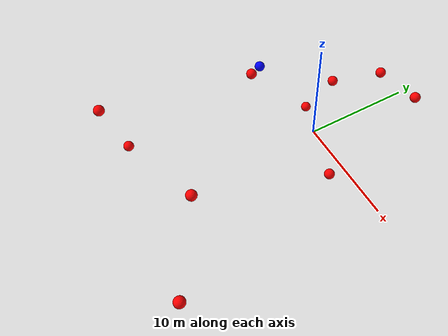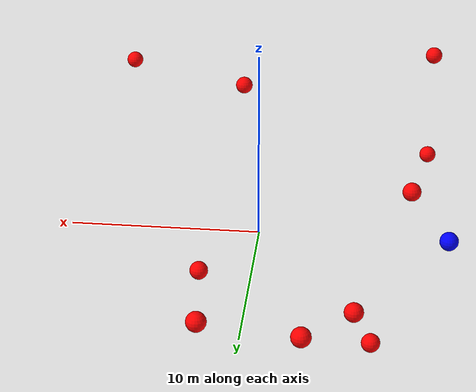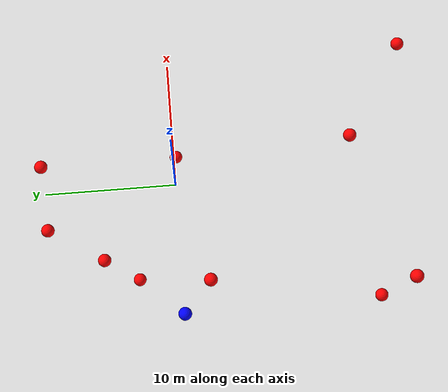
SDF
<?xml version="1.0" ?>
<sdf version="1.8">
    <world name="3d_world">
        <physics name="1ms" type="ode">
            <max_step_size>0.001</max_step_size>
            <real_time_factor>1.0</real_time_factor>
            <real_time_update_rate>1000.0</real_time_update_rate>
        </physics>
        <gravity>0 0 0</gravity>

        <plugin
            filename="gz-sim-physics-system"
            name="gz::sim::v8::systems::Physics">
        </plugin>
        <plugin
            filename="libignition-gazebo-user-commands-system.so"
            name="ignition::gazebo::systems::UserCommands">
        </plugin>
        <plugin
            filename="gz-sim-scene-broadcaster-system"
            name="gz::sim::systems::SceneBroadcaster">
        </plugin>
        <plugin
            filename="gz-sim-sensors-system"
            name="gz::sim::systems::Sensors">
            <render_engine>ogre2</render_engine>
        </plugin>

        <light type="directional" name="sun">
            <cast_shadows>true</cast_shadows>
            <pose>0 0 10 0 0 0</pose>
            <diffuse>0.8 0.8 0.8 1</diffuse>
            <specular>0.2 0.2 0.2 1</specular>
            <attenuation>
                <range>1000</range>
                <constant>0.9</constant>
                <linear>0.01</linear>
                <quadratic>0.001</quadratic>
            </attenuation>
            <direction>-0.5 0.1 -0.9</direction>
        </light>

        <!-- AGENTE -->
        <model name='agente' canonical_link='chassis'>
            <pose relative_to='world'>-10.0 0 0.0 0 0 0</pose>
            <link name='chassis'>
                <pose relative_to='__model__'>0.0 0 0.0 0 0 0</pose>
                <inertial>
                    <mass>1.14395</mass>
                    <inertia>
                        <ixx>0.095329</ixx>
                        <ixy>0</ixy>
                        <ixz>0</ixz>
                        <iyy>0.381317</iyy>
                        <iyz>0</iyz>
                        <izz>0.476646</izz>
                    </inertia>
                </inertial>
                <visual name='visual'>
                    <geometry>
                        <sphere>
                            <radius>0.5</radius>
                        </sphere>
                    </geometry>
                    <material>
                        <ambient>0.0 0.0 1.0 1</ambient>
                        <diffuse>0.0 0.0 1.0 1</diffuse>
                        <specular>0.0 0.0 1.0 1</specular>
                    </material>
                </visual>
                <collision name='collision'>
                    <geometry>
                        <sphere>
                            <radius>0.5</radius>
                        </sphere>
                    </geometry>
                </collision>
                <enable_gravity>false</enable_gravity>
            </link>

            <link name='lidar_link'>
                <pose relative_to='chassis'>0.0 0 0.1 0 0 0</pose>
                <inertial>
                    <mass>0.1</mass>
                    <inertia>
                        <ixx>0.000166667</ixx>
                        <iyy>0.000166667</iyy>
                        <izz>0.000166667</izz>
                    </inertia>
                </inertial>
                <collision name='collision'>
                    <geometry>
                        <cylinder>
                            <radius>0.05</radius>
                            <length>0.1</length>
                        </cylinder>
                    </geometry>
                </collision>
                <visual name='visual'>
                    <geometry>
                        <cylinder>
                            <radius>0.05</radius>
                            <length>0.1</length>
                        </cylinder>
                    </geometry>
                    <material>
                        <ambient>0.0 1.0 0.0 1</ambient>
                        <diffuse>0.0 1.0 0.0 1</diffuse>
                        <specular>0.0 1.0 0.0 1</specular>
                    </material>
                </visual>
                <sensor name="lidar" type="gpu_lidar">
                    <topic>scan</topic>
                    <update_rate>10</update_rate>
                    <lidar>
                        <scan>
                            <horizontal>
                                <samples>5000</samples>
                                <resolution>1</resolution>
                                <min_angle>-3.14159</min_angle>
                                <max_angle>3.14159</max_angle>
                            </horizontal>
                        </scan>
                        <range>
                            <min>0.1</min>
                            <max>10.0</max>
                            <resolution>0.01</resolution>
                        </range>
                    </lidar>
                    <visualize>true</visualize>
                    <always_on>true</always_on>
                    <update_rate>10</update_rate>
                    <pose_frame>lidar</pose_frame>
                </sensor>
                <enable_gravity>false</enable_gravity>
            </link>

            <joint name="lidar_joint" type="fixed">
                <parent>chassis</parent>
                <child>lidar_link</child>
            </joint>

            <plugin
                filename="ignition-gazebo-joint-state-publisher-system"
                name="ignition::gazebo::systems::JointStatePublisher">
            </plugin>
            <plugin
                filename="ignition-gazebo-odometry-publisher-system"
                name="ignition::gazebo::systems::OdometryPublisher">
                <dimensions>3</dimensions>
            </plugin>
            <plugin
                filename="ignition-gazebo-velocity-control-system"
                name="ignition::gazebo::systems::VelocityControl">
                <initial_linear>0.0 0 0</initial_linear>
                <initial_angular>0 0 0.0</initial_angular>
            </plugin>
            <plugin
                filename="libignition-gazebo-pose-publisher-system.so"
                name="ignition::gazebo::systems::PosePublisher">
                <topic>/agente/pose</topic>
                <frame_id>agente</frame_id>
                <update_rate>30</update_rate>
            </plugin>
        </model>

        <!-- OBSTACLE 1 -->
        <model name='obstacle_1' canonical_link='obstacle'>
            <static>false</static>
            <pose relative_to='world'>-9.29 -16.74 3.46 0 0 0</pose>
            <link name='obstacle'>
                <pose relative_to='__model__'>0.0 0 0.0 0 0 0</pose>
                <visual name='visual'>
                    <geometry>
                        <sphere>
                            <radius>0.50</radius>
                        </sphere>
                    </geometry>
                    <material>
                        <ambient>1.0 0.0 0.0 1</ambient>
                        <diffuse>1.0 0.0 0.0 1</diffuse>
                        <specular>1.0 0.0 0.0 1</specular>
                    </material>
                </visual>
                <collision name='collision'>
                    <geometry>
                        <sphere>
                            <radius>0.50</radius>
                        </sphere>
                    </geometry>
                </collision>
                <enable_gravity>false</enable_gravity>
            </link>

            <plugin
                filename="ignition-gazebo-velocity-control-system"
                name="ignition::gazebo::systems::VelocityControl">
                <initial_linear>0.70 1.83 -0.38</initial_linear>
                <initial_angular>0 0 0</initial_angular>
            </plugin>

            <plugin
                filename="ignition-gazebo-odometry-publisher-system"
                name="ignition::gazebo::systems::OdometryPublisher">
                <dimensions>3</dimensions>
            </plugin>
        </model>

        <!-- OBSTACLE 2 -->
        <model name='obstacle_2' canonical_link='obstacle'>
            <static>false</static>
            <pose relative_to='world'>3.28 -0.12 -2.65 0 0 0</pose>
            <link name='obstacle'>
                <pose relative_to='__model__'>0.0 0 0.0 0 0 0</pose>
                <visual name='visual'>
                    <geometry>
                        <sphere>
                            <radius>0.50</radius>
                        </sphere>
                    </geometry>
                    <material>
                        <ambient>1.0 0.0 0.0 1</ambient>
                        <diffuse>1.0 0.0 0.0 1</diffuse>
                        <specular>1.0 0.0 0.0 1</specular>
                    </material>
                </visual>
                <collision name='collision'>
                    <geometry>
                        <sphere>
                            <radius>0.50</radius>
                        </sphere>
                    </geometry>
                </collision>
                <enable_gravity>false</enable_gravity>
            </link>

            <plugin
                filename="ignition-gazebo-velocity-control-system"
                name="ignition::gazebo::systems::VelocityControl">
                <initial_linear>0.05 0.02 0.49</initial_linear>
                <initial_angular>0 0 0</initial_angular>
            </plugin>

            <plugin
                filename="ignition-gazebo-odometry-publisher-system"
                name="ignition::gazebo::systems::OdometryPublisher">
                <dimensions>3</dimensions>
            </plugin>
        </model>

        <!-- OBSTACLE 3 -->
        <model name='obstacle_3' canonical_link='obstacle'>
            <static>false</static>
            <pose relative_to='world'>-9.22 -15.13 -2.58 0 0 0</pose>
            <link name='obstacle'>
                <pose relative_to='__model__'>0.0 0 0.0 0 0 0</pose>
                <visual name='visual'>
                    <geometry>
                        <sphere>
                            <radius>0.50</radius>
                        </sphere>
                    </geometry>
                    <material>
                        <ambient>1.0 0.0 0.0 1</ambient>
                        <diffuse>1.0 0.0 0.0 1</diffuse>
                        <specular>1.0 0.0 0.0 1</specular>
                    </material>
                </visual>
                <collision name='collision'>
                    <geometry>
                        <sphere>
                            <radius>0.50</radius>
                        </sphere>
                    </geometry>
                </collision>
                <enable_gravity>false</enable_gravity>
            </link>

            <plugin
                filename="ignition-gazebo-velocity-control-system"
                name="ignition::gazebo::systems::VelocityControl">
                <initial_linear>1.13 1.63 0.28</initial_linear>
                <initial_angular>0 0 0</initial_angular>
            </plugin>

            <plugin
                filename="ignition-gazebo-odometry-publisher-system"
                name="ignition::gazebo::systems::OdometryPublisher">
                <dimensions>3</dimensions>
            </plugin>
        </model>

        <!-- OBSTACLE 4 -->
        <model name='obstacle_4' canonical_link='obstacle'>
            <static>false</static>
            <pose relative_to='world'>9.74 -18.16 1.81 0 0 0</pose>
            <link name='obstacle'>
                <pose relative_to='__model__'>0.0 0 0.0 0 0 0</pose>
                <visual name='visual'>
                    <geometry>
                        <sphere>
                            <radius>0.50</radius>
                        </sphere>
                    </geometry>
                    <material>
                        <ambient>1.0 0.0 0.0 1</ambient>
                        <diffuse>1.0 0.0 0.0 1</diffuse>
                        <specular>1.0 0.0 0.0 1</specular>
                    </material>
                </visual>
                <collision name='collision'>
                    <geometry>
                        <sphere>
                            <radius>0.50</radius>
                        </sphere>
                    </geometry>
                </collision>
                <enable_gravity>false</enable_gravity>
            </link>

            <plugin
                filename="ignition-gazebo-velocity-control-system"
                name="ignition::gazebo::systems::VelocityControl">
                <initial_linear>-0.81 1.82 -0.18</initial_linear>
                <initial_angular>0 0 0</initial_angular>
            </plugin>

            <plugin
                filename="ignition-gazebo-odometry-publisher-system"
                name="ignition::gazebo::systems::OdometryPublisher">
                <dimensions>3</dimensions>
            </plugin>
        </model>

        <!-- OBSTACLE 5 -->
        <model name='obstacle_5' canonical_link='obstacle'>
            <static>false</static>
            <pose relative_to='world'>-5.25 5.83 -0.89 0 0 0</pose>
            <link name='obstacle'>
                <pose relative_to='__model__'>0.0 0 0.0 0 0 0</pose>
                <visual name='visual'>
                    <geometry>
                        <sphere>
                            <radius>0.50</radius>
                        </sphere>
                    </geometry>
                    <material>
                        <ambient>1.0 0.0 0.0 1</ambient>
                        <diffuse>1.0 0.0 0.0 1</diffuse>
                        <specular>1.0 0.0 0.0 1</specular>
                    </material>
                </visual>
                <collision name='collision'>
                    <geometry>
                        <sphere>
                            <radius>0.50</radius>
                        </sphere>
                    </geometry>
                </collision>
                <enable_gravity>false</enable_gravity>
            </link>

            <plugin
                filename="ignition-gazebo-velocity-control-system"
                name="ignition::gazebo::systems::VelocityControl">
                <initial_linear>0.44 -1.93 0.29</initial_linear>
                <initial_angular>0 0 0</initial_angular>
            </plugin>

            <plugin
                filename="ignition-gazebo-odometry-publisher-system"
                name="ignition::gazebo::systems::OdometryPublisher">
                <dimensions>3</dimensions>
            </plugin>
        </model>

        <!-- OBSTACLE 6 -->
        <model name='obstacle_6' canonical_link='obstacle'>
            <static>false</static>
            <pose relative_to='world'>1.96 10.19 1.01 0 0 0</pose>
            <link name='obstacle'>
                <pose relative_to='__model__'>0.0 0 0.0 0 0 0</pose>
                <visual name='visual'>
                    <geometry>
                        <sphere>
                            <radius>0.50</radius>
                        </sphere>
                    </geometry>
                    <material>
                        <ambient>1.0 0.0 0.0 1</ambient>
                        <diffuse>1.0 0.0 0.0 1</diffuse>
                        <specular>1.0 0.0 0.0 1</specular>
                    </material>
                </visual>
                <collision name='collision'>
                    <geometry>
                        <sphere>
                            <radius>0.50</radius>
                        </sphere>
                    </geometry>
                </collision>
                <enable_gravity>false</enable_gravity>
            </link>

            <plugin
                filename="ignition-gazebo-velocity-control-system"
                name="ignition::gazebo::systems::VelocityControl">
                <initial_linear>-0.59 -1.90 -0.19</initial_linear>
                <initial_angular>0 0 0</initial_angular>
            </plugin>

            <plugin
                filename="ignition-gazebo-odometry-publisher-system"
                name="ignition::gazebo::systems::OdometryPublisher">
                <dimensions>3</dimensions>
            </plugin>
        </model>

        <!-- OBSTACLE 7 -->
        <model name='obstacle_7' canonical_link='obstacle'>
            <static>false</static>
            <pose relative_to='world'>-7.98 -2.07 1.72 0 0 0</pose>
            <link name='obstacle'>
                <pose relative_to='__model__'>0.0 0 0.0 0 0 0</pose>
                <visual name='visual'>
                    <geometry>
                        <sphere>
                            <radius>0.50</radius>
                        </sphere>
                    </geometry>
                    <material>
                        <ambient>1.0 0.0 0.0 1</ambient>
                        <diffuse>1.0 0.0 0.0 1</diffuse>
                        <specular>1.0 0.0 0.0 1</specular>
                    </material>
                </visual>
                <collision name='collision'>
                    <geometry>
                        <sphere>
                            <radius>0.50</radius>
                        </sphere>
                    </geometry>
                </collision>
                <enable_gravity>false</enable_gravity>
            </link>

            <plugin
                filename="ignition-gazebo-velocity-control-system"
                name="ignition::gazebo::systems::VelocityControl">
                <initial_linear>1.87 0.55 -0.46</initial_linear>
                <initial_angular>0 0 0</initial_angular>
            </plugin>

            <plugin
                filename="ignition-gazebo-odometry-publisher-system"
                name="ignition::gazebo::systems::OdometryPublisher">
                <dimensions>3</dimensions>
            </plugin>
        </model>

        <!-- OBSTACLE 8 -->
        <model name='obstacle_8' canonical_link='obstacle'>
            <static>false</static>
            <pose relative_to='world'>-2.90 9.90 0.27 0 0 0</pose>
            <link name='obstacle'>
                <pose relative_to='__model__'>0.0 0 0.0 0 0 0</pose>
                <visual name='visual'>
                    <geometry>
                        <sphere>
                            <radius>0.50</radius>
                        </sphere>
                    </geometry>
                    <material>
                        <ambient>1.0 0.0 0.0 1</ambient>
                        <diffuse>1.0 0.0 0.0 1</diffuse>
                        <specular>1.0 0.0 0.0 1</specular>
                    </material>
                </visual>
                <collision name='collision'>
                    <geometry>
                        <sphere>
                            <radius>0.50</radius>
                        </sphere>
                    </geometry>
                </collision>
                <enable_gravity>false</enable_gravity>
            </link>

            <plugin
                filename="ignition-gazebo-velocity-control-system"
                name="ignition::gazebo::systems::VelocityControl">
                <initial_linear>1.41 -1.42 -0.04</initial_linear>
                <initial_angular>0 0 0</initial_angular>
            </plugin>

            <plugin
                filename="ignition-gazebo-odometry-publisher-system"
                name="ignition::gazebo::systems::OdometryPublisher">
                <dimensions>3</dimensions>
            </plugin>
        </model>

        <!-- OBSTACLE 9 -->
        <model name='obstacle_9' canonical_link='obstacle'>
            <static>false</static>
            <pose relative_to='world'>2.17 -13.42 2.44 0 0 0</pose>
            <link name='obstacle'>
                <pose relative_to='__model__'>0.0 0 0.0 0 0 0</pose>
                <visual name='visual'>
                    <geometry>
                        <sphere>
                            <radius>0.50</radius>
                        </sphere>
                    </geometry>
                    <material>
                        <ambient>1.0 0.0 0.0 1</ambient>
                        <diffuse>1.0 0.0 0.0 1</diffuse>
                        <specular>1.0 0.0 0.0 1</specular>
                    </material>
                </visual>
                <collision name='collision'>
                    <geometry>
                        <sphere>
                            <radius>0.50</radius>
                        </sphere>
                    </geometry>
                </collision>
                <enable_gravity>false</enable_gravity>
            </link>

            <plugin
                filename="ignition-gazebo-velocity-control-system"
                name="ignition::gazebo::systems::VelocityControl">
                <initial_linear>0.46 1.92 -0.35</initial_linear>
                <initial_angular>0 0 0</initial_angular>
            </plugin>

            <plugin
                filename="ignition-gazebo-odometry-publisher-system"
                name="ignition::gazebo::systems::OdometryPublisher">
                <dimensions>3</dimensions>
            </plugin>
        </model>

        <!-- OBSTACLE 10 -->
        <model name='obstacle_10' canonical_link='obstacle'>
            <static>false</static>
            <pose relative_to='world'>-6.15 3.41 -4.32 0 0 0</pose>
            <link name='obstacle'>
                <pose relative_to='__model__'>0.0 0 0.0 0 0 0</pose>
                <visual name='visual'>
                    <geometry>
                        <sphere>
                            <radius>0.50</radius>
                        </sphere>
                    </geometry>
                    <material>
                        <ambient>1.0 0.0 0.0 1</ambient>
                        <diffuse>1.0 0.0 0.0 1</diffuse>
                        <specular>1.0 0.0 0.0 1</specular>
                    </material>
                </visual>
                <collision name='collision'>
                    <geometry>
                        <sphere>
                            <radius>0.50</radius>
                        </sphere>
                    </geometry>
                </collision>
                <enable_gravity>false</enable_gravity>
            </link>

            <plugin
                filename="ignition-gazebo-velocity-control-system"
                name="ignition::gazebo::systems::VelocityControl">
                <initial_linear>1.65 -0.70 0.89</initial_linear>
                <initial_angular>0 0 0</initial_angular>
            </plugin>

            <plugin
                filename="ignition-gazebo-odometry-publisher-system"
                name="ignition::gazebo::systems::OdometryPublisher">
                <dimensions>3</dimensions>
            </plugin>
        </model>

    </world>
</sdf>
